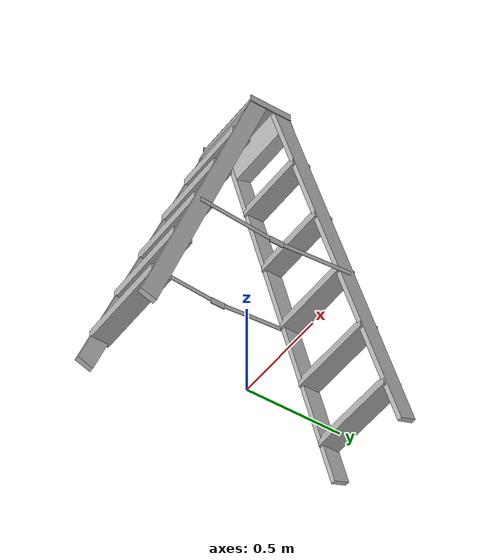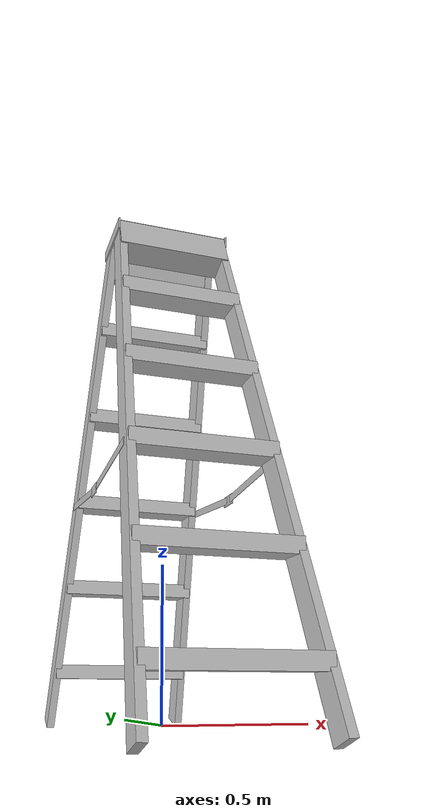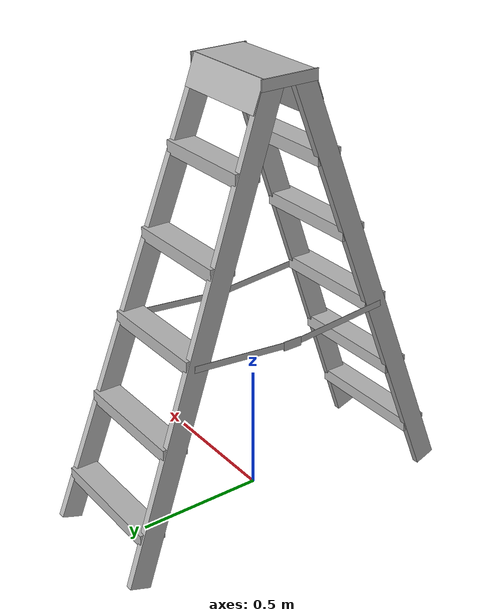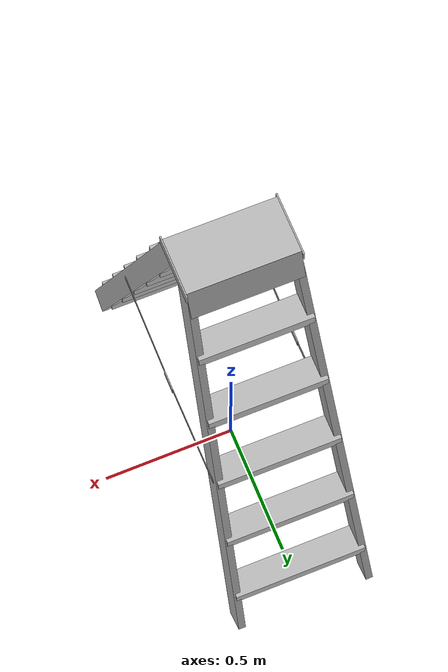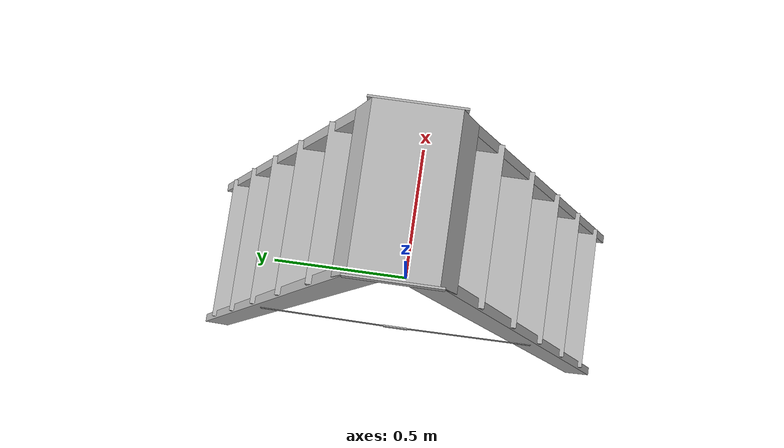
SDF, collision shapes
<?xml version="1.0" ?>
<sdf version="1.6">
  <model name="Ladder">
    <link name="base_link">
      <visual name="base_visual">
        <geometry>
          <mesh>
            <uri>base_visual.glb</uri>
          </mesh>
        </geometry>
      </visual>
      <collision name="double_stepladder_6ft_open003_collider_box">
        <pose>-0.218174 -0.371562 0.836679 1.456672 1.219083 -1.677994</pose>
        <geometry>
          <box>
            <size>1.813121 0.084531 0.026942</size>
          </box>
        </geometry>
      </collision>
      <collision name="double_stepladder_6ft_open004_collider_box">
        <pose>-0.0 -0.614183 0.173367 3.141593 0.0 1.570796</pose>
        <geometry>
          <box>
            <size>0.099076 0.5 0.05</size>
          </box>
        </geometry>
      </collision>
      <collision name="double_stepladder_6ft_open005_collider_box">
        <pose>-0.0 -0.503173 0.478367 0.0 -0.0 3.141593</pose>
        <geometry>
          <box>
            <size>0.480732 0.099076 0.05</size>
          </box>
        </geometry>
      </collision>
      <collision name="double_stepladder_6ft_open006_collider_box">
        <pose>-0.0 -0.392526 0.782367 3.141593 -0.0 0.0</pose>
        <geometry>
          <box>
            <size>0.457375 0.099076 0.05</size>
          </box>
        </geometry>
      </collision>
      <collision name="double_stepladder_6ft_open007_collider_box">
        <pose>-0.0 -0.281151 1.088367 0.0 -0.0 3.141593</pose>
        <geometry>
          <box>
            <size>0.433865 0.099076 0.05</size>
          </box>
        </geometry>
      </collision>
      <collision name="double_stepladder_6ft_open008_collider_box">
        <pose>-0.0 -0.170504 1.392367 -0.0 0.0 0.0</pose>
        <geometry>
          <box>
            <size>0.410048 0.099076 0.05</size>
          </box>
        </geometry>
      </collision>
      <collision name="double_stepladder_6ft_open021_collider_box">
        <pose>-0.23554 -0.212371 0.754702 1.939827 -1.47727 1.202739</pose>
        <geometry>
          <box>
            <size>0.02508 0.402079 0.001803</size>
          </box>
        </geometry>
      </collision>
      <collision name="double_stepladder_6ft_open022_collider_box">
        <pose>-0.236264 0.0 0.736198 -1.537059 0.0 1.570796</pose>
        <geometry>
          <box>
            <size>0.074577 0.035125 0.004002</size>
          </box>
        </geometry>
      </collision>
      <collision name="double_stepladder_6ft_open023_collider_box">
        <pose>0.218174 -0.371562 0.836679 -1.456666 1.219083 -1.463598</pose>
        <geometry>
          <box>
            <size>1.813121 0.084531 0.026942</size>
          </box>
        </geometry>
      </collision>
      <collision name="double_stepladder_6ft_open025_collider_box">
        <pose>-0.200794 -0.0 1.689591 -1.570786 -1e-06 -1.570801</pose>
        <geometry>
          <box>
            <size>0.230187 0.0412 0.005257</size>
          </box>
        </geometry>
      </collision>
      <collision name="double_stepladder_6ft_open024_collider_box">
        <pose>0.0 -0.08212 1.637534 -0.349066 -0.0 0.0</pose>
        <geometry>
          <box>
            <size>0.396332 0.088417 0.120598</size>
          </box>
        </geometry>
      </collision>
      <collision name="double_stepladder_6ft_open022_collider_box.001">
        <pose>0.236264 0.0 0.736198 -1.537059 0.0 1.570796</pose>
        <geometry>
          <box>
            <size>0.074577 0.035125 0.004002</size>
          </box>
        </geometry>
      </collision>
      <collision name="double_stepladder_6ft_open021_collider_box.001">
        <pose>0.23554 -0.212371 0.754702 1.939827 -1.47727 1.202739</pose>
        <geometry>
          <box>
            <size>0.02508 0.402079 0.001803</size>
          </box>
        </geometry>
      </collision>
      <collision name="double_stepladder_6ft_open021_collider_box.002">
        <pose>0.23554 0.212371 0.754702 1.201765 -1.664323 1.938854</pose>
        <geometry>
          <box>
            <size>0.02508 0.402079 0.001803</size>
          </box>
        </geometry>
      </collision>
      <collision name="double_stepladder_6ft_open021_collider_box.003">
        <pose>-0.23554 0.212371 0.754702 1.201765 -1.664323 1.938854</pose>
        <geometry>
          <box>
            <size>0.02508 0.402079 0.001803</size>
          </box>
        </geometry>
      </collision>
      <collision name="double_stepladder_6ft_open025_collider_box.001">
        <pose>0.200794 -0.0 1.689591 -1.570786 -1e-06 -1.570801</pose>
        <geometry>
          <box>
            <size>0.230187 0.0412 0.005257</size>
          </box>
        </geometry>
      </collision>
      <collision name="double_stepladder_6ft_open024_collider_box.002">
        <pose>0.0 0.0 1.699893 -0.0 0.0 0.0</pose>
        <geometry>
          <box>
            <size>0.396332 0.206404 0.020597</size>
          </box>
        </geometry>
      </collision>
      <collision name="double_stepladder_6ft_open024_collider_box.003">
        <pose>0.0 0.08212 1.637534 0.349066 -0.0 0.0</pose>
        <geometry>
          <box>
            <size>0.396332 0.088417 0.120598</size>
          </box>
        </geometry>
      </collision>
      <collision name="double_stepladder_6ft_open023_collider_box.001">
        <pose>0.218174 0.371562 0.836679 -1.684926 1.922509 -1.677995</pose>
        <geometry>
          <box>
            <size>1.813121 0.084531 0.026942</size>
          </box>
        </geometry>
      </collision>
      <collision name="double_stepladder_6ft_open003_collider_box.001">
        <pose>-0.218174 0.371562 0.836679 1.68492 1.922509 -1.463598</pose>
        <geometry>
          <box>
            <size>1.813121 0.084531 0.026942</size>
          </box>
        </geometry>
      </collision>
      <collision name="double_stepladder_6ft_open008_collider_box.001">
        <pose>-0.0 0.170504 1.392367 -0.0 0.0 0.0</pose>
        <geometry>
          <box>
            <size>0.410048 0.099076 0.05</size>
          </box>
        </geometry>
      </collision>
      <collision name="double_stepladder_6ft_open007_collider_box.001">
        <pose>-0.0 0.281151 1.088367 0.0 -0.0 3.141593</pose>
        <geometry>
          <box>
            <size>0.433865 0.099076 0.05</size>
          </box>
        </geometry>
      </collision>
      <collision name="double_stepladder_6ft_open006_collider_box.001">
        <pose>-0.0 0.392526 0.782367 3.141593 -0.0 0.0</pose>
        <geometry>
          <box>
            <size>0.457375 0.099076 0.05</size>
          </box>
        </geometry>
      </collision>
      <collision name="double_stepladder_6ft_open005_collider_box.001">
        <pose>-0.0 0.503173 0.478367 0.0 -0.0 3.141593</pose>
        <geometry>
          <box>
            <size>0.480732 0.099076 0.05</size>
          </box>
        </geometry>
      </collision>
      <collision name="double_stepladder_6ft_open004_collider_box.001">
        <pose>-0.0 0.614183 0.173367 3.141593 0.0 1.570796</pose>
        <geometry>
          <box>
            <size>0.099076 0.5 0.05</size>
          </box>
        </geometry>
      </collision>
    </link>
  </model>
</sdf>
